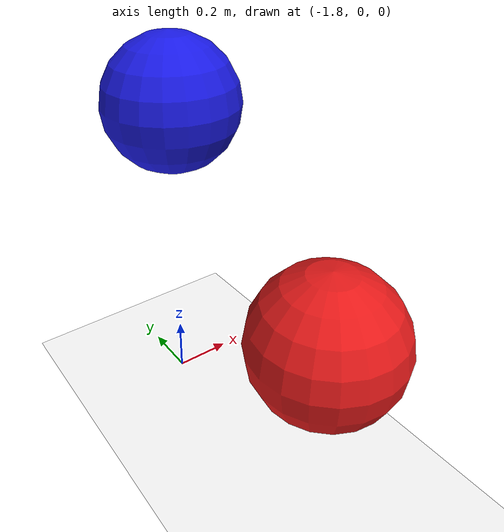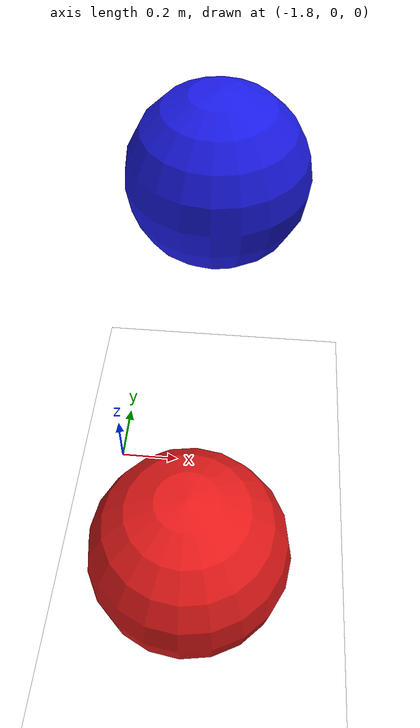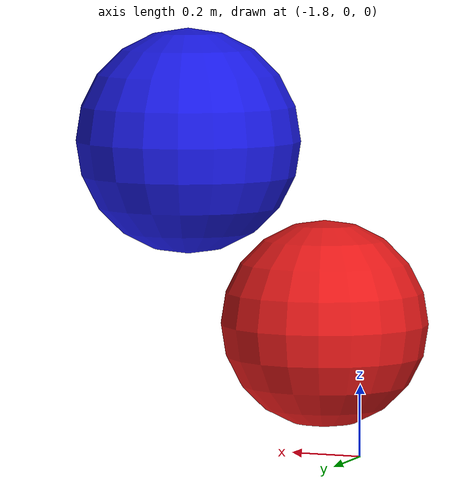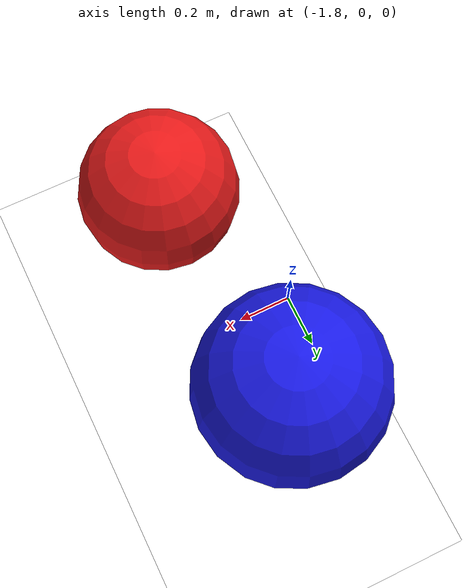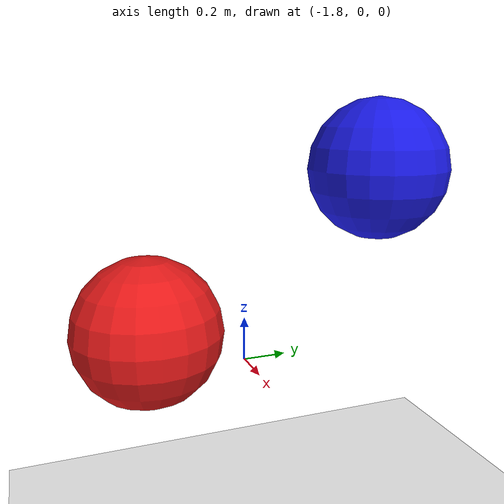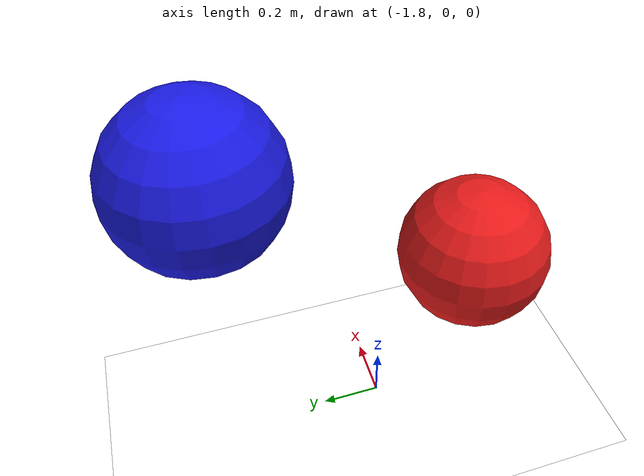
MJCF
<mujoco model="scene1_close_proximity">
  <compiler angle="radian"/>

  <option timestep="0.002" gravity="0 0 -9.81">
    <flag contact="disable"/>
  </option>

  <visual>
    <global offwidth="800" offheight="800"/>
    <quality shadowsize="4096"/>
  </visual>

  <asset>
    <texture name="white_skybox"
             type="skybox"
             builtin="flat"
             width="512"
             height="512"
             rgb1="1 1 1"
             rgb2="1 1 1"/>
    <material name="white_floor" rgba="1 1 1 1" reflectance="0"/>
  </asset>

  <worldbody>
    <light directional="true" pos="0 0 3" dir="0 0 -1" diffuse="0.8 0.8 0.8"/>
    <light directional="true" pos="2 2 3" dir="-0.5 -0.5 -1" diffuse="0.4 0.4 0.4"/>

    <geom name="floor" type="plane" size="5 5 0.1" material="white_floor" pos="0 0 -0.5"/>

    <!-- Target at center where spheres pass close -->
    <body name="target" pos="0 0 0.5">
      <site name="target_site" size="0.01" rgba="1 0 0 0"/>
    </body>

    <!-- Red sphere -->
    <body name="sphere_red" pos="-1.5 -0.5 0.3">
      <freejoint/>
      <geom name="red_sphere" type="sphere" size="0.3" rgba="0.9 0.1 0.1 1" mass="1"/>
    </body>

    <!-- Blue sphere -->
    <body name="sphere_blue" pos="-1.5 0.5 0.9">
      <freejoint/>
      <geom name="blue_sphere" type="sphere" size="0.3" rgba="0.1 0.1 0.9 1" mass="1"/>
    </body>

    <!-- 12 cameras with diverse coverage — scaled 1.6x for 800x800 square resolution -->
    <camera name="cam0" pos="4.8 0 2.4" mode="targetbody" target="target" fovy="50"/>
    <camera name="cam1" pos="0 4.8 2.4" mode="targetbody" target="target" fovy="50"/>
    <camera name="cam2" pos="-4.8 0 2.4" mode="targetbody" target="target" fovy="50"/>
    <camera name="cam3" pos="0 -4.8 2.4" mode="targetbody" target="target" fovy="50"/>
    <camera name="cam4" pos="4.0 4.0 4.0" mode="targetbody" target="target" fovy="50"/>
    <camera name="cam5" pos="-4.0 4.0 4.0" mode="targetbody" target="target" fovy="50"/>
    <camera name="cam6" pos="4.0 -4.0 4.0" mode="targetbody" target="target" fovy="50"/>
    <camera name="cam7" pos="-4.0 -4.0 4.0" mode="targetbody" target="target" fovy="50"/>
    <camera name="cam8" pos="3.2 0 1.3" mode="targetbody" target="target" fovy="55"/>
    <camera name="cam9" pos="-3.2 0 1.3" mode="targetbody" target="target" fovy="55"/>
    <camera name="cam10" pos="0 0 5.6" mode="targetbody" target="target" fovy="45"/>
    <camera name="cam11" pos="2.4 2.4 4.8" mode="targetbody" target="target" fovy="45"/>
  </worldbody>
</mujoco>
